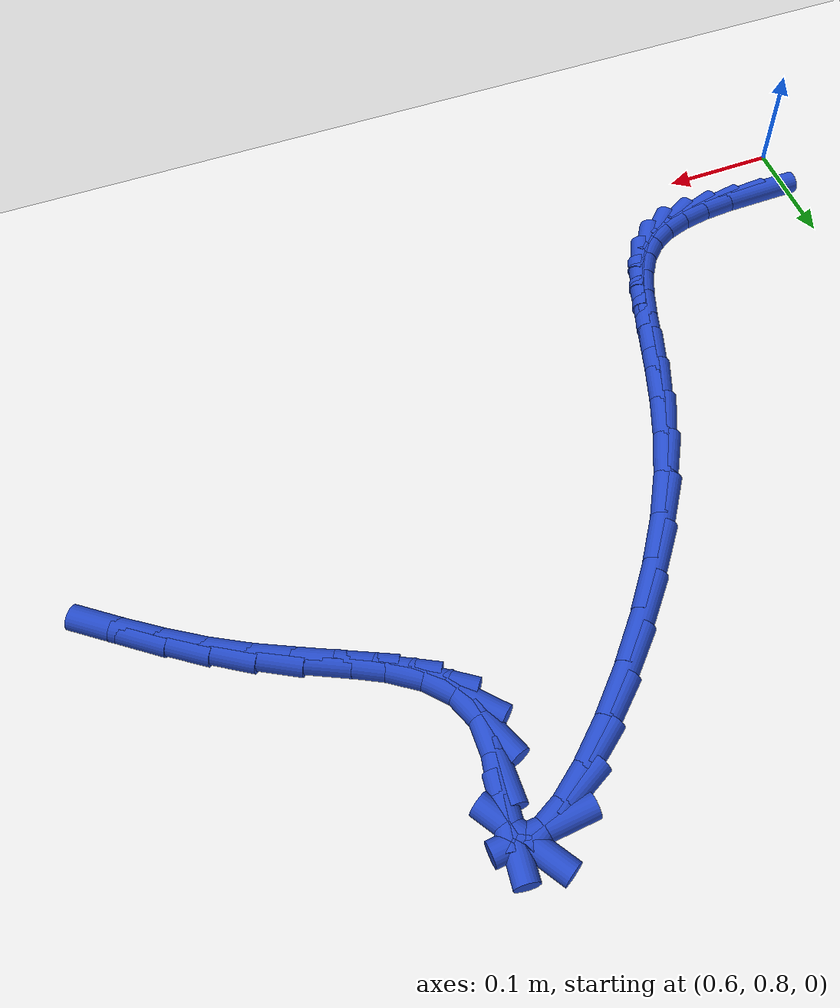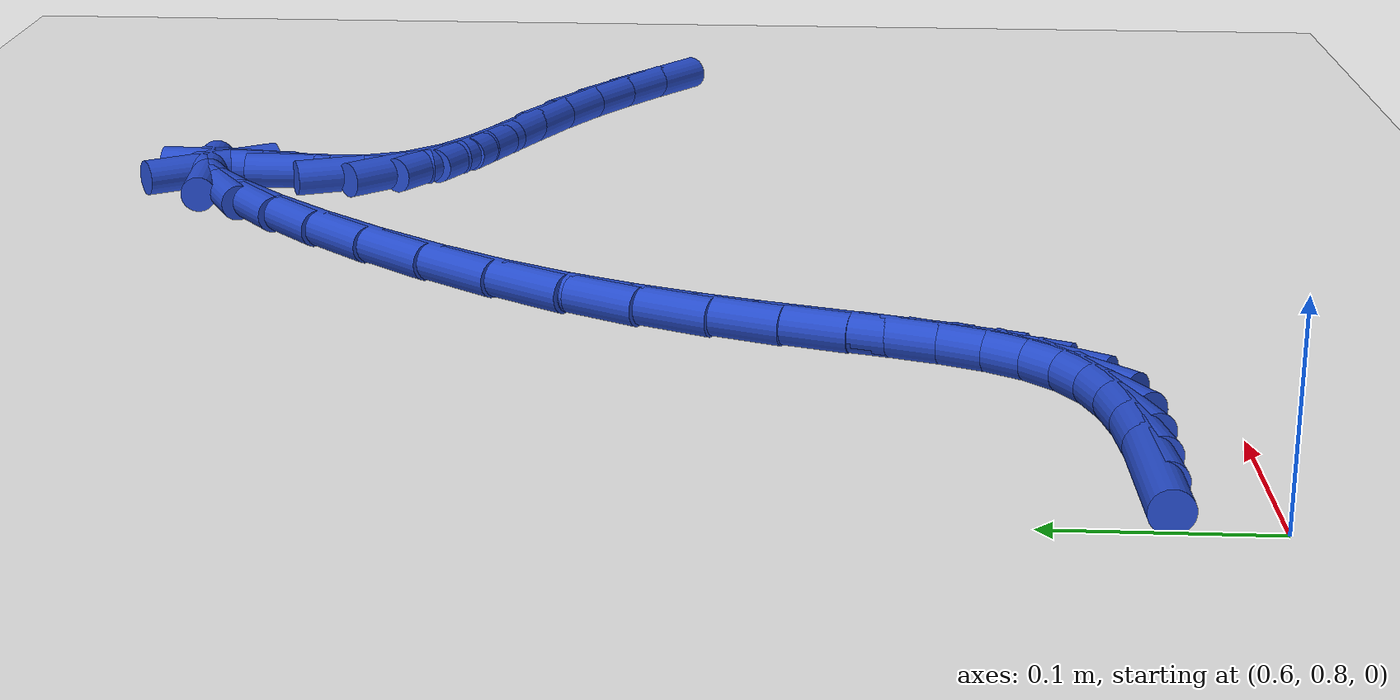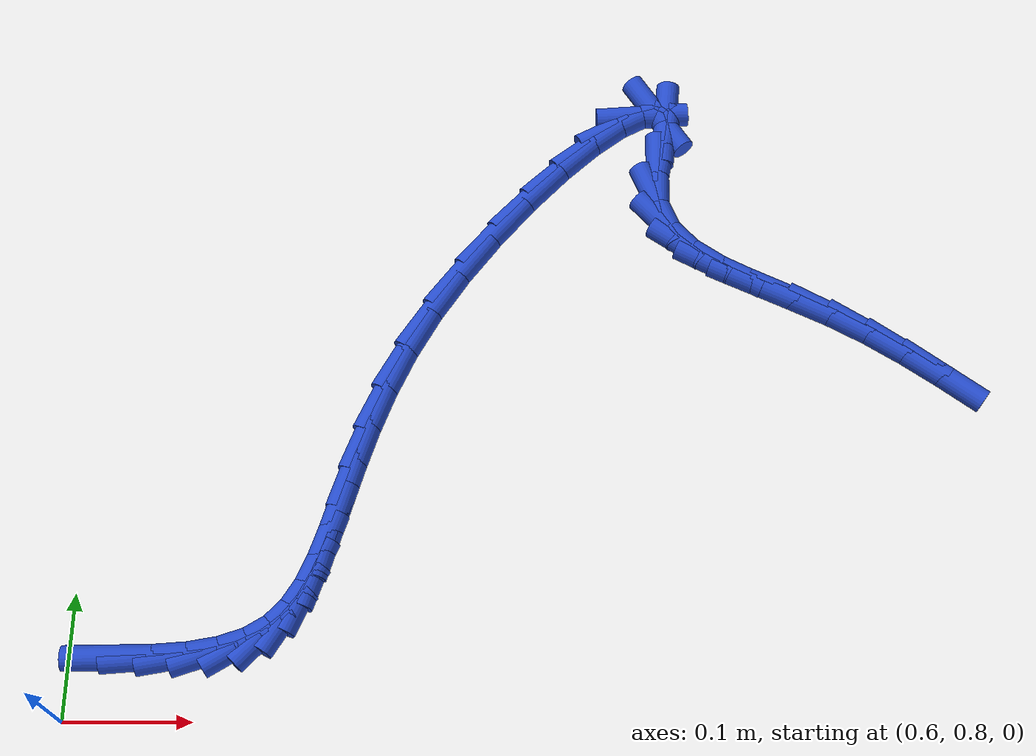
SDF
<sdf version="1.6">
 <world name="default">
  <model name="ground_plane">
   <static>1</static>
   <link name="link">
    <collision name="collision">
     <geometry><plane><normal>0 0 1</normal><size>100 100</size></plane></geometry>
     <surface><friction><ode><mu>100</mu><mu2>50</mu2></ode></friction></surface>
    </collision>
    <visual name="visual">
     <cast_shadows>0</cast_shadows>
     <geometry><plane><normal>0 0 1</normal><size>100 100</size></plane></geometry>
     <material>
      <script><uri>file://media/materials/scripts/gazebo.material</uri><name>Gazebo/WhiteGlow</name></script>
     </material>
    </visual>
   </link>
  </model>
  <model name="line">
   <link name="link_41">
    <pose>0.6372323791366038 0.8473684714004919 0.01 0 1.57 0.014078071878091328</pose>
    <collision name="collision">
     <geometry><cylinder><radius>0.01</radius><length>0.08</length></cylinder></geometry>
    </collision>
    <visual name="visual">
     <material>
      <script><name>Gazebo/Blue</name><uri>file://media/materials/scripts/gazebo.material</uri></script>
     </material>
     <geometry><cylinder><radius>0.01</radius><length>0.08</length></cylinder></geometry>
    </visual>
   </link>
   <link name="link_42">
    <pose>0.6662389711708036 0.8477768552679308 0.01 0 1.57 0.07657779723410559</pose>
    <collision name="collision">
     <geometry><cylinder><radius>0.01</radius><length>0.08</length></cylinder></geometry>
    </collision>
    <visual name="visual">
     <material>
      <script><name>Gazebo/Blue</name><uri>file://media/materials/scripts/gazebo.material</uri></script>
     </material>
     <geometry><cylinder><radius>0.01</radius><length>0.08</length></cylinder></geometry>
    </visual>
   </link>
   <link name="link_43">
    <pose>0.6931330502726664 0.8498403797939824 0.01 0 1.57 0.17637545547229563</pose>
    <collision name="collision">
     <geometry><cylinder><radius>0.01</radius><length>0.08</length></cylinder></geometry>
    </collision>
    <visual name="visual">
     <material>
      <script><name>Gazebo/Blue</name><uri>file://media/materials/scripts/gazebo.material</uri></script>
     </material>
     <geometry><cylinder><radius>0.01</radius><length>0.08</length></cylinder></geometry>
    </visual>
   </link>
   <link name="link_44">
    <pose>0.7173961323625564 0.8541647262444225 0.01 0 1.57 0.32825744072564345</pose>
    <collision name="collision">
     <geometry><cylinder><radius>0.01</radius><length>0.08</length></cylinder></geometry>
    </collision>
    <visual name="visual">
     <material>
      <script><name>Gazebo/Blue</name><uri>file://media/materials/scripts/gazebo.material</uri></script>
     </material>
     <geometry><cylinder><radius>0.01</radius><length>0.08</length></cylinder></geometry>
    </visual>
   </link>
   <link name="link_45">
    <pose>0.7385097333608381 0.8613555758850274 0.01 0 1.57 0.5480415390426403</pose>
    <collision name="collision">
     <geometry><cylinder><radius>0.01</radius><length>0.08</length></cylinder></geometry>
    </collision>
    <visual name="visual">
     <material>
      <script><name>Gazebo/Blue</name><uri>file://media/materials/scripts/gazebo.material</uri></script>
     </material>
     <geometry><cylinder><radius>0.01</radius><length>0.08</length></cylinder></geometry>
    </visual>
   </link>
   <link name="link_46">
    <pose>0.7559666330440499 0.8720115083398305 0.01 0 1.57 0.8045073944918965</pose>
    <collision name="collision">
     <geometry><cylinder><radius>0.01</radius><length>0.08</length></cylinder></geometry>
    </collision>
    <visual name="visual">
     <material>
      <script><name>Gazebo/Blue</name><uri>file://media/materials/scripts/gazebo.material</uri></script>
     </material>
     <geometry><cylinder><radius>0.01</radius><length>0.08</length></cylinder></geometry>
    </visual>
   </link>
   <link name="link_47">
    <pose>0.7698038735795254 0.886387956405233 0.01 0 1.57 1.0176272706725502</pose>
    <collision name="collision">
     <geometry><cylinder><radius>0.01</radius><length>0.08</length></cylinder></geometry>
    </collision>
    <visual name="visual">
     <material>
      <script><name>Gazebo/Blue</name><uri>file://media/materials/scripts/gazebo.material</uri></script>
     </material>
     <geometry><cylinder><radius>0.01</radius><length>0.08</length></cylinder></geometry>
    </visual>
   </link>
   <link name="link_48">
    <pose>0.7808340677343297 0.9042513707333547 0.01 0 1.57 1.163459142255062</pose>
    <collision name="collision">
     <geometry><cylinder><radius>0.01</radius><length>0.08</length></cylinder></geometry>
    </collision>
    <visual name="visual">
     <material>
      <script><name>Gazebo/Blue</name><uri>file://media/materials/scripts/gazebo.material</uri></script>
     </material>
     <geometry><cylinder><radius>0.01</radius><length>0.08</length></cylinder></geometry>
    </visual>
   </link>
   <link name="link_49">
    <pose>0.7899291805404246 0.9253307815303004 0.01 0 1.57 1.2481525484894271</pose>
    <collision name="collision">
     <geometry><cylinder><radius>0.01</radius><length>0.08</length></cylinder></geometry>
    </collision>
    <visual name="visual">
     <material>
      <script><name>Gazebo/Blue</name><uri>file://media/materials/scripts/gazebo.material</uri></script>
     </material>
     <geometry><cylinder><radius>0.01</radius><length>0.08</length></cylinder></geometry>
    </visual>
   </link>
   <link name="link_50">
    <pose>0.7979611770297719 0.949355219002175 0.01 0 1.57 1.2851466532019082</pose>
    <collision name="collision">
     <geometry><cylinder><radius>0.01</radius><length>0.08</length></cylinder></geometry>
    </collision>
    <visual name="visual">
     <material>
      <script><name>Gazebo/Blue</name><uri>file://media/materials/scripts/gazebo.material</uri></script>
     </material>
     <geometry><cylinder><radius>0.01</radius><length>0.08</length></cylinder></geometry>
    </visual>
   </link>
   <link name="link_51">
    <pose>0.8058020222343341 0.9760537133550845 0.01 0 1.57 1.285935398453922</pose>
    <collision name="collision">
     <geometry><cylinder><radius>0.01</radius><length>0.08</length></cylinder></geometry>
    </collision>
    <visual name="visual">
     <material>
      <script><name>Gazebo/Blue</name><uri>file://media/materials/scripts/gazebo.material</uri></script>
     </material>
     <geometry><cylinder><radius>0.01</radius><length>0.08</length></cylinder></geometry>
    </visual>
   </link>
   <link name="link_52">
    <pose>0.8143236811860728 1.0051552947951337 0.01 0 1.57 1.2587817243880264</pose>
    <collision name="collision">
     <geometry><cylinder><radius>0.01</radius><length>0.08</length></cylinder></geometry>
    </collision>
    <visual name="visual">
     <material>
      <script><name>Gazebo/Blue</name><uri>file://media/materials/scripts/gazebo.material</uri></script>
     </material>
     <geometry><cylinder><radius>0.01</radius><length>0.08</length></cylinder></geometry>
    </visual>
   </link>
   <link name="link_53">
    <pose>0.82439811891695 1.0363889935284278 0.01 0 1.57 1.2096802552737174</pose>
    <collision name="collision">
     <geometry><cylinder><radius>0.01</radius><length>0.08</length></cylinder></geometry>
    </collision>
    <visual name="visual">
     <material>
      <script><name>Gazebo/Blue</name><uri>file://media/materials/scripts/gazebo.material</uri></script>
     </material>
     <geometry><cylinder><radius>0.01</radius><length>0.08</length></cylinder></geometry>
    </visual>
   </link>
   <link name="link_54">
    <pose>0.836897300458928 1.0694838397610718 0.01 0 1.57 1.1434529510312286</pose>
    <collision name="collision">
     <geometry><cylinder><radius>0.01</radius><length>0.08</length></cylinder></geometry>
    </collision>
    <visual name="visual">
     <material>
      <script><name>Gazebo/Blue</name><uri>file://media/materials/scripts/gazebo.material</uri></script>
     </material>
     <geometry><cylinder><radius>0.01</radius><length>0.08</length></cylinder></geometry>
    </visual>
   </link>
   <link name="link_55">
    <pose>0.8526931908439687 1.1041688636991716 0.01 0 1.57 1.0646016290601974</pose>
    <collision name="collision">
     <geometry><cylinder><radius>0.01</radius><length>0.08</length></cylinder></geometry>
    </collision>
    <visual name="visual">
     <material>
      <script><name>Gazebo/Blue</name><uri>file://media/materials/scripts/gazebo.material</uri></script>
     </material>
     <geometry><cylinder><radius>0.01</radius><length>0.08</length></cylinder></geometry>
    </visual>
   </link>
   <link name="link_56">
    <pose>0.8726511241609208 1.1401697499167087 0.01 0 1.57 0.9867419532965794</pose>
    <collision name="collision">
     <geometry><cylinder><radius>0.01</radius><length>0.08</length></cylinder></geometry>
    </collision>
    <visual name="visual">
     <material>
      <script><name>Gazebo/Blue</name><uri>file://media/materials/scripts/gazebo.material</uri></script>
     </material>
     <geometry><cylinder><radius>0.01</radius><length>0.08</length></cylinder></geometry>
    </visual>
   </link>
   <link name="link_57">
    <pose>0.8968846697390839 1.176832881237407 0.01 0 1.57 0.9232519375012668</pose>
    <collision name="collision">
     <geometry><cylinder><radius>0.01</radius><length>0.08</length></cylinder></geometry>
    </collision>
    <visual name="visual">
     <material>
      <script><name>Gazebo/Blue</name><uri>file://media/materials/scripts/gazebo.material</uri></script>
     </material>
     <geometry><cylinder><radius>0.01</radius><length>0.08</length></cylinder></geometry>
    </visual>
   </link>
   <link name="link_58">
    <pose>0.9240738010889508 1.2127813219251233 0.01 0 1.57 0.8670865732290968</pose>
    <collision name="collision">
     <geometry><cylinder><radius>0.01</radius><length>0.08</length></cylinder></geometry>
    </collision>
    <visual name="visual">
     <material>
      <script><name>Gazebo/Blue</name><uri>file://media/materials/scripts/gazebo.material</uri></script>
     </material>
     <geometry><cylinder><radius>0.01</radius><length>0.08</length></cylinder></geometry>
    </visual>
   </link>
   <link name="link_59">
    <pose>0.9527374121513218 1.2465568637952003 0.01 0 1.57 0.8106889304128033</pose>
    <collision name="collision">
     <geometry><cylinder><radius>0.01</radius><length>0.08</length></cylinder></geometry>
    </collision>
    <visual name="visual">
     <material>
      <script><name>Gazebo/Blue</name><uri>file://media/materials/scripts/gazebo.material</uri></script>
     </material>
     <geometry><cylinder><radius>0.01</radius><length>0.08</length></cylinder></geometry>
    </visual>
   </link>
   <link name="link_60">
    <pose>0.9813943968669966 1.276701298662981 0.01 0 1.57 0.7449385307859171</pose>
    <collision name="collision">
     <geometry><cylinder><radius>0.01</radius><length>0.08</length></cylinder></geometry>
    </collision>
    <visual name="visual">
     <material>
      <script><name>Gazebo/Blue</name><uri>file://media/materials/scripts/gazebo.material</uri></script>
     </material>
     <geometry><cylinder><radius>0.01</radius><length>0.08</length></cylinder></geometry>
    </visual>
   </link>
   <link name="link_61">
    <pose>1.0085636491767742 1.3017564183438077 0.01 0 1.57 0.6528830683168945</pose>
    <collision name="collision">
     <geometry><cylinder><radius>0.01</radius><length>0.08</length></cylinder></geometry>
    </collision>
    <visual name="visual">
     <material>
      <script><name>Gazebo/Blue</name><uri>file://media/materials/scripts/gazebo.material</uri></script>
     </material>
     <geometry><cylinder><radius>0.01</radius><length>0.08</length></cylinder></geometry>
    </visual>
   </link>
   <link name="link_62">
    <pose>1.032764063021455 1.3202640146530222 0.01 0 1.57 0.4887061611051287</pose>
    <collision name="collision">
     <geometry><cylinder><radius>0.01</radius><length>0.08</length></cylinder></geometry>
    </collision>
    <visual name="visual">
     <material>
      <script><name>Gazebo/Blue</name><uri>file://media/materials/scripts/gazebo.material</uri></script>
     </material>
     <geometry><cylinder><radius>0.01</radius><length>0.08</length></cylinder></geometry>
    </visual>
   </link>
   <link name="link_63">
    <pose>1.0525145323418381 1.3307658794059671 0.01 0 1.57 0.07496552367978968</pose>
    <collision name="collision">
     <geometry><cylinder><radius>0.01</radius><length>0.08</length></cylinder></geometry>
    </collision>
    <visual name="visual">
     <material>
      <script><name>Gazebo/Blue</name><uri>file://media/materials/scripts/gazebo.material</uri></script>
     </material>
     <geometry><cylinder><radius>0.01</radius><length>0.08</length></cylinder></geometry>
    </visual>
   </link>
   <link name="link_64">
    <pose>1.066333951078723 1.3318038044179852 0.01 0 1.57 -0.9956655265323965</pose>
    <collision name="collision">
     <geometry><cylinder><radius>0.01</radius><length>0.08</length></cylinder></geometry>
    </collision>
    <visual name="visual">
     <material>
      <script><name>Gazebo/Blue</name><uri>file://media/materials/scripts/gazebo.material</uri></script>
     </material>
     <geometry><cylinder><radius>0.01</radius><length>0.08</length></cylinder></geometry>
    </visual>
   </link>
   <link name="link_65">
    <pose>1.0727412131729093 1.3219195815044185 0.01 0 1.57 1.4744912303399906</pose>
    <collision name="collision">
     <geometry><cylinder><radius>0.01</radius><length>0.08</length></cylinder></geometry>
    </collision>
    <visual name="visual">
     <material>
      <script><name>Gazebo/Blue</name><uri>file://media/materials/scripts/gazebo.material</uri></script>
     </material>
     <geometry><cylinder><radius>0.01</radius><length>0.08</length></cylinder></geometry>
    </visual>
   </link>
   <link name="link_66">
    <pose>1.070623663172188 1.2999996676046883 0.01 0 1.57 1.3758665254964286</pose>
    <collision name="collision">
     <geometry><cylinder><radius>0.01</radius><length>0.08</length></cylinder></geometry>
    </collision>
    <visual name="visual">
     <material>
      <script><name>Gazebo/Blue</name><uri>file://media/materials/scripts/gazebo.material</uri></script>
     </material>
     <geometry><cylinder><radius>0.01</radius><length>0.08</length></cylinder></geometry>
    </visual>
   </link>
   <link name="link_67">
    <pose>1.06479409993601 1.2704734537905 0.01 0 1.57 1.5645068673455942</pose>
    <collision name="collision">
     <geometry><cylinder><radius>0.01</radius><length>0.08</length></cylinder></geometry>
    </collision>
    <visual name="visual">
     <material>
      <script><name>Gazebo/Blue</name><uri>file://media/materials/scripts/gazebo.material</uri></script>
     </material>
     <geometry><cylinder><radius>0.01</radius><length>0.08</length></cylinder></geometry>
    </visual>
   </link>
   <link name="link_68">
    <pose>1.0646152558782902 1.242038307501844 0.01 0 1.57 -1.185910926088481</pose>
    <collision name="collision">
     <geometry><cylinder><radius>0.01</radius><length>0.08</length></cylinder></geometry>
    </collision>
    <visual name="visual">
     <material>
      <script><name>Gazebo/Blue</name><uri>file://media/materials/scripts/gazebo.material</uri></script>
     </material>
     <geometry><cylinder><radius>0.01</radius><length>0.08</length></cylinder></geometry>
    </visual>
   </link>
   <link name="link_69">
    <pose>1.074087779421236 1.218654476815771 0.01 0 1.57 -0.8337503875959589</pose>
    <collision name="collision">
     <geometry><cylinder><radius>0.01</radius><length>0.08</length></cylinder></geometry>
    </collision>
    <visual name="visual">
     <material>
      <script><name>Gazebo/Blue</name><uri>file://media/materials/scripts/gazebo.material</uri></script>
     </material>
     <geometry><cylinder><radius>0.01</radius><length>0.08</length></cylinder></geometry>
    </visual>
   </link>
   <link name="link_70">
    <pose>1.0916223834838321 1.1993365825338809 0.01 0 1.57 -0.6058743552661893</pose>
    <collision name="collision">
     <geometry><cylinder><radius>0.01</radius><length>0.08</length></cylinder></geometry>
    </collision>
    <visual name="visual">
     <material>
      <script><name>Gazebo/Blue</name><uri>file://media/materials/scripts/gazebo.material</uri></script>
     </material>
     <geometry><cylinder><radius>0.01</radius><length>0.08</length></cylinder></geometry>
    </visual>
   </link>
   <link name="link_71">
    <pose>1.115379466020502 1.1828777823450989 0.01 0 1.57 -0.4843678262053638</pose>
    <collision name="collision">
     <geometry><cylinder><radius>0.01</radius><length>0.08</length></cylinder></geometry>
    </collision>
    <visual name="visual">
     <material>
      <script><name>Gazebo/Blue</name><uri>file://media/materials/scripts/gazebo.material</uri></script>
     </material>
     <geometry><cylinder><radius>0.01</radius><length>0.08</length></cylinder></geometry>
    </visual>
   </link>
   <link name="link_72">
    <pose>1.1435194249856704 1.1680712339383525 0.01 0 1.57 -0.43775853810819215</pose>
    <collision name="collision">
     <geometry><cylinder><radius>0.01</radius><length>0.08</length></cylinder></geometry>
    </collision>
    <visual name="visual">
     <material>
      <script><name>Gazebo/Blue</name><uri>file://media/materials/scripts/gazebo.material</uri></script>
     </material>
     <geometry><cylinder><radius>0.01</radius><length>0.08</length></cylinder></geometry>
    </visual>
   </link>
   <link name="link_73">
    <pose>1.17420265833376 1.1537100950025676 0.01 0 1.57 -0.4489912112018849</pose>
    <collision name="collision">
     <geometry><cylinder><radius>0.01</radius><length>0.08</length></cylinder></geometry>
    </collision>
    <visual name="visual">
     <material>
      <script><name>Gazebo/Blue</name><uri>file://media/materials/scripts/gazebo.material</uri></script>
     </material>
     <geometry><cylinder><radius>0.01</radius><length>0.08</length></cylinder></geometry>
    </visual>
   </link>
   <link name="link_74">
    <pose>1.205589564019194 1.1385875232266707 0.01 0 1.57 -0.5074245883647727</pose>
    <collision name="collision">
     <geometry><cylinder><radius>0.01</radius><length>0.08</length></cylinder></geometry>
    </collision>
    <visual name="visual">
     <material>
      <script><name>Gazebo/Blue</name><uri>file://media/materials/scripts/gazebo.material</uri></script>
     </material>
     <geometry><cylinder><radius>0.01</radius><length>0.08</length></cylinder></geometry>
    </visual>
   </link>
   <link name="link_75">
    <pose>1.2360261260319716 1.1216653316465894 0.01 0 1.57 -0.5685375864182829</pose>
    <collision name="collision">
     <geometry><cylinder><radius>0.01</radius><length>0.08</length></cylinder></geometry>
    </collision>
    <visual name="visual">
     <material>
      <script><name>Gazebo/Blue</name><uri>file://media/materials/scripts/gazebo.material</uri></script>
     </material>
     <geometry><cylinder><radius>0.01</radius><length>0.08</length></cylinder></geometry>
    </visual>
   </link>
   <link name="link_76">
    <pose>1.2651362435472981 1.1030666665221327 0.01 0 1.57 -0.6131494041517901</pose>
    <collision name="collision">
     <geometry><cylinder><radius>0.01</radius><length>0.08</length></cylinder></geometry>
    </collision>
    <visual name="visual">
     <material>
      <script><name>Gazebo/Blue</name><uri>file://media/materials/scripts/gazebo.material</uri></script>
     </material>
     <geometry><cylinder><radius>0.01</radius><length>0.08</length></cylinder></geometry>
    </visual>
   </link>
   <link name="link_77">
    <pose>1.2930818725664321 1.0834036449584812 0.01 0 1.57 -0.6412366648807184</pose>
    <collision name="collision">
     <geometry><cylinder><radius>0.01</radius><length>0.08</length></cylinder></geometry>
    </collision>
    <visual name="visual">
     <material>
      <script><name>Gazebo/Blue</name><uri>file://media/materials/scripts/gazebo.material</uri></script>
     </material>
     <geometry><cylinder><radius>0.01</radius><length>0.08</length></cylinder></geometry>
    </visual>
   </link>
  </model>
 </world>
</sdf>
